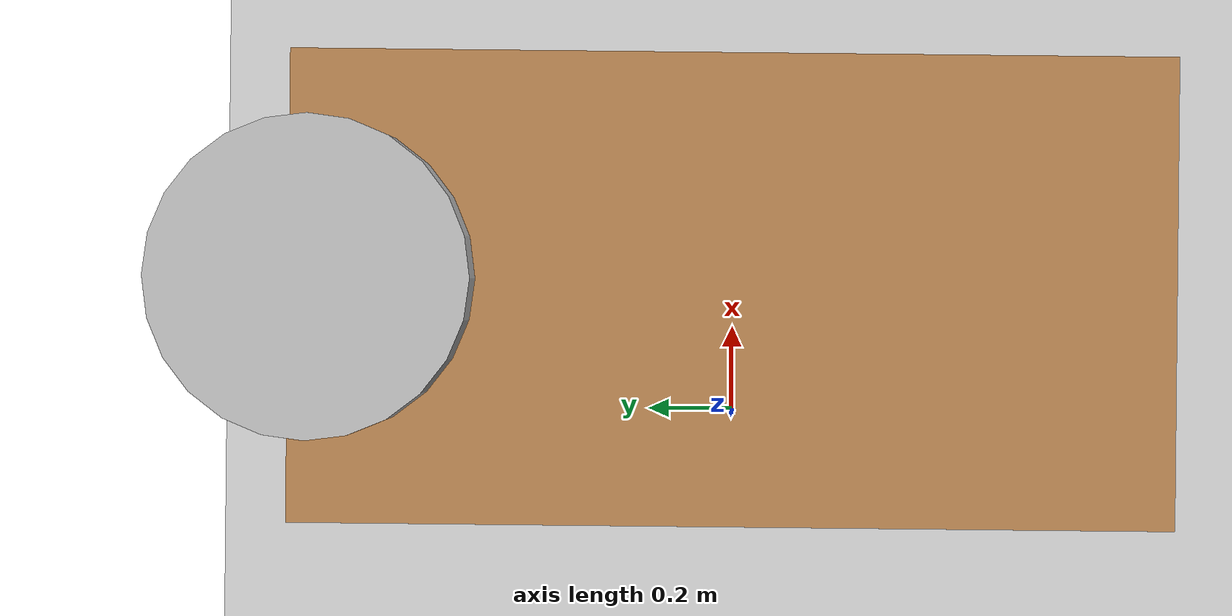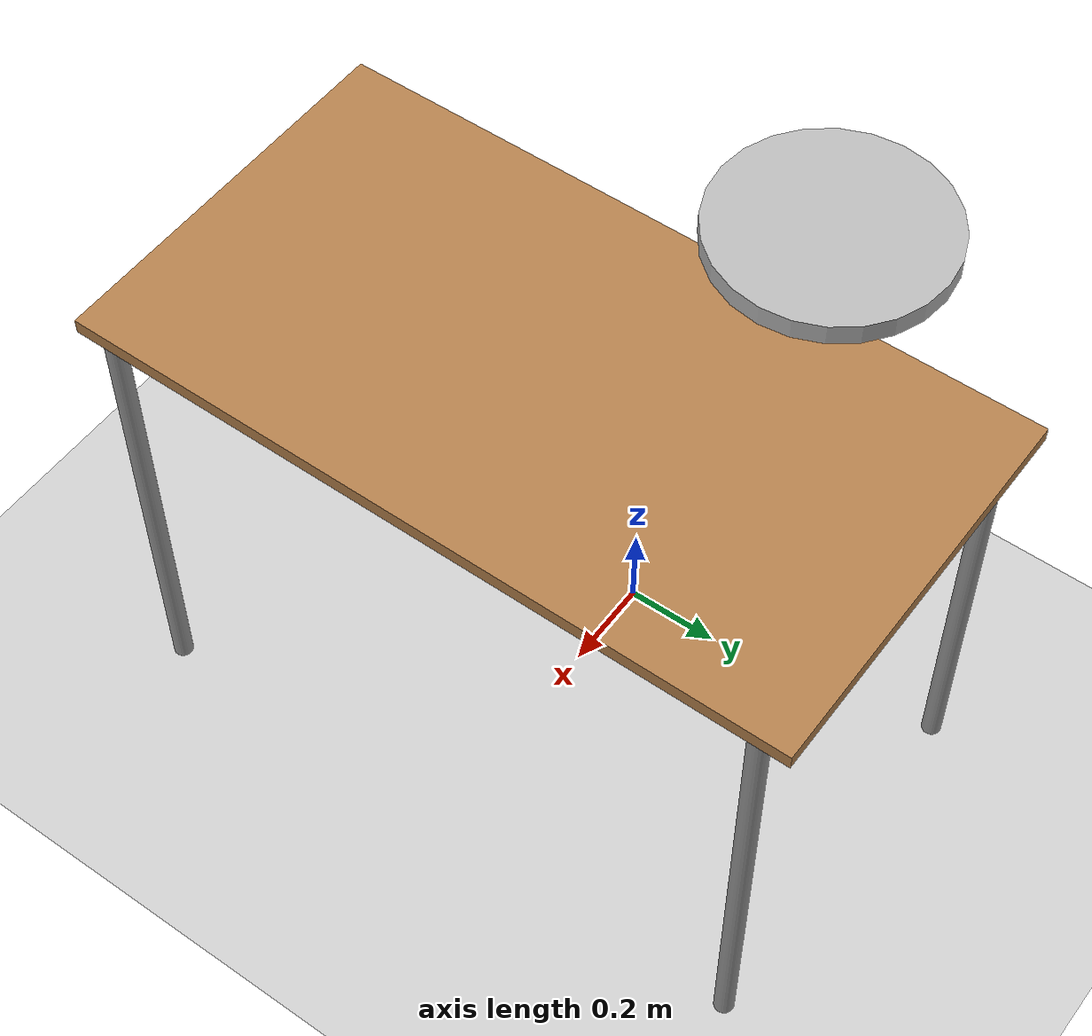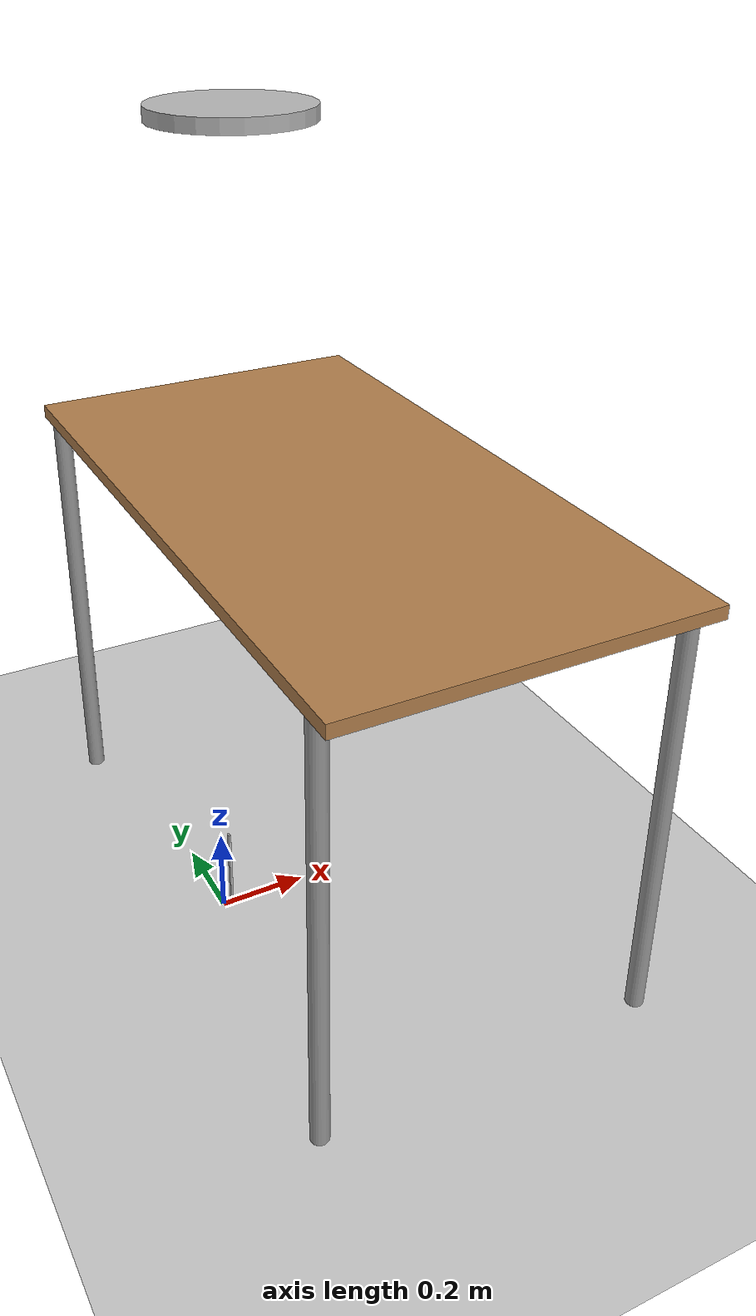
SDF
<?xml version="1.0" ?>
<sdf version="1.6">
  <world name="CRANE-X7 with Table">

    <include>
      <uri>model://sun</uri>
    </include>

    <model name="table">
      <include>
        <uri>model://table</uri>
      </include>

      <!-- X7を机の端に配置するため、机を移動、回転する -->
      <pose>0.29 0 0 0 0 1.5708</pose>
    </model>

    <model name="stick">
    <link name="link">
      <pose> 0.01925 0 0.1 0 0 0</pose>
      <inertial>
        <mass>0.9</mass>
        <inertia>
          <ixx>2.3541666666666672e-05</ixx>
          <ixy>0</ixy>
          <ixz>0</ixz>
          <iyy>2.3541666666666672e-05</iyy>
          <iyz>0</iyz>
          <izz>2.3541666666666672e-05</izz>
        </inertia>
      </inertial>

      <collision name="collision">
        <geometry>
          <box>
            <size>0.005 0.01 0.20</size>
          </box>
        </geometry>
      </collision>

      <visual name="visual">
        <geometry>
          <box>
            <size>0.005 0.01 0.20</size>
          </box>
        </geometry>
      </visual>
    </link>
  </model>

    <model name="tanbarin">
  <pose>0.3 0.5 1.7 0 0 0</pose>
    <link name="link">
      <inertial>
        <mass>0.9</mass>
        <inertia>
		<ixx>0.083</ixx>
          <ixy>0.0</ixy>
          <ixz>0.0</ixz>
          <iyy>0.083</iyy>
          <iyz>0.0</iyz>
          <izz>0.083</izz>
        </inertia>
      </inertial>
      <collision name="collision">
        <geometry>
          <cylinder>
		  <radius>0.192</radius>
		  <length>0.035</length>
          </cylinder>
        </geometry>
      </collision>
      <visual name="visual">
        <geometry>
          <cylinder>
		  <radius>0.192</radius>
		  <length>0.035</length>
          </cylinder>
        </geometry>
      </visual>
    </link>
  </model>

    <model name="ground_plane">
      <include>
        <uri>model://ground_plane</uri>
      </include>

      <joint name='ground_joint' type='fixed'>
        <parent>ground_plane::link</parent>
        <child>table::link</child>
      </joint>
    </model>
  </world>
</sdf>

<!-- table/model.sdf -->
<sdf version="1.5">
  <model name="table">
    <static>true</static>
    <link name="link">
      <collision name="surface">
        <pose>0 0 1.0 0 0 0</pose>
        <geometry>
          <box>
            <size>1.5 0.8 0.03</size>
          </box>
        </geometry>
        <surface>
          <friction>
            <ode>
              <mu>0.6</mu>
              <mu2>0.6</mu2>
            </ode>
          </friction>
        </surface>
      </collision>
      <visual name="visual1">
        <pose>0 0 1.0 0 0 0</pose>
        <geometry>
          <box>
            <size>1.5 0.8 0.03</size>
          </box>
        </geometry>
        <material>
          <script>
            <uri>model://media/materials/scripts/gazebo.material</uri>
            <name>Gazebo/Wood</name>
          </script>
        </material>
      </visual>
      <collision name="front_left_leg">
        <pose>0.68 0.38 0.5 0 0 0</pose>
        <geometry>
          <cylinder>
            <radius>0.02</radius>
            <length>1.0</length>
          </cylinder>
        </geometry>
      </collision>
      <visual name="front_left_leg">
        <pose>0.68 0.38 0.5 0 0 0</pose>
        <geometry>
          <cylinder>
            <radius>0.02</radius>
            <length>1.0</length>
          </cylinder>
        </geometry>
        <material>
          <script>
            <uri>model://media/materials/scripts/gazebo.material</uri>
            <name>Gazebo/Grey</name>
          </script>
        </material>
      </visual>
      <collision name="front_right_leg">
        <pose>0.68 -0.38 0.5 0 0 0</pose>
        <geometry>
          <cylinder>
            <radius>0.02</radius>
            <length>1.0</length>
          </cylinder>
        </geometry>
      </collision>
      <visual name="front_right_leg">
        <pose>0.68 -0.38 0.5 0 0 0</pose>
        <geometry>
          <cylinder>
            <radius>0.02</radius>
            <length>1.0</length>
          </cylinder>
        </geometry>
        <material>
          <script>
            <uri>model://media/materials/scripts/gazebo.material</uri>
            <name>Gazebo/Grey</name>
          </script>
        </material>
      </visual>
      <collision name="back_right_leg">
        <pose>-0.68 -0.38 0.5 0 0 0</pose>
        <geometry>
          <cylinder>
            <radius>0.02</radius>
            <length>1.0</length>
          </cylinder>
        </geometry>
      </collision>
      <visual name="back_right_leg">
        <pose>-0.68 -0.38 0.5 0 0 0</pose>
        <geometry>
          <cylinder>
            <radius>0.02</radius>
            <length>1.0</length>
          </cylinder>
        </geometry>
        <material>
          <script>
            <uri>model://media/materials/scripts/gazebo.material</uri>
            <name>Gazebo/Grey</name>
          </script>
        </material>
      </visual>
      <collision name="back_left_leg">
        <pose>-0.68 0.38 0.5 0 0 0</pose>
        <geometry>
          <cylinder>
            <radius>0.02</radius>
            <length>1.0</length>
          </cylinder>
        </geometry>
      </collision>
      <visual name="back_left_leg">
        <pose>-0.68 0.38 0.5 0 0 0</pose>
        <geometry>
          <cylinder>
            <radius>0.02</radius>
            <length>1.0</length>
          </cylinder>
        </geometry>
        <material>
          <script>
            <uri>model://media/materials/scripts/gazebo.material</uri>
            <name>Gazebo/Grey</name>
          </script>
        </material>
      </visual>
    </link>
  </model>
</sdf>
